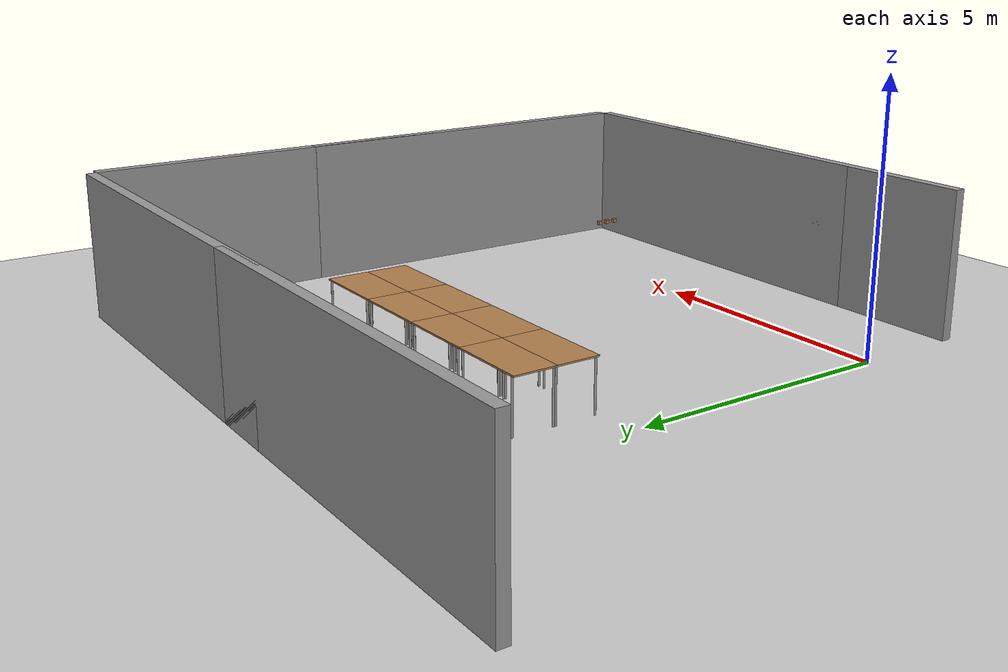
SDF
<sdf version="1.6">
 <world name="default">
  <model name="ground_plane">
   <static>1</static>
   <link name="link">
    <collision name="collision">
     <geometry><plane><normal>0 0 1</normal><size>100 100</size></plane></geometry>
     <surface>
      <contact><collide_bitmask>65535</collide_bitmask></contact>
      <friction><ode><mu>100</mu><mu2>50</mu2></ode></friction>
     </surface>
    </collision>
    <visual name="visual">
     <cast_shadows>0</cast_shadows>
     <geometry><plane><normal>0 0 1</normal><size>100 100</size></plane></geometry>
     <material>
      <script><uri>file://media/materials/scripts/gazebo.material</uri><name>Gazebo/Grey</name></script>
     </material>
    </visual>
   </link>
  </model>
  <model name="wood_cube_7_5cm">
   <link name="link">
    <pose>0 0 0.0375 0 -0 0</pose>
    <inertial>
     <mass>0.2249</mass>
     <inertia>
      <ixx>0.000210844</ixx>
      <ixy>0</ixy>
      <ixz>0</ixz>
      <iyy>0.000210844</iyy>
      <iyz>0</iyz>
      <izz>0.000210844</izz>
     </inertia>
    </inertial>
    <collision name="collision">
     <geometry><box><size>0.075 0.075 0.075</size></box></geometry>
     <surface>
      <contact>
       <poissons_ratio>0.347</poissons_ratio>
       <elastic_modulus>8.8e+09</elastic_modulus>
       <ode><kp>100000</kp><kd>100</kd><max_vel>100</max_vel><min_depth>0.001</min_depth></ode>
      </contact>
      <friction>
       <torsional>
        <coefficient>1</coefficient>
        <use_patch_radius>0</use_patch_radius>
        <surface_radius>0.01</surface_radius>
       </torsional>
      </friction>
     </surface>
    </collision>
    <visual name="visual">
     <geometry><box><size>0.075 0.075 0.075</size></box></geometry>
     <material>
      <script><uri>file://media/materials/scripts/gazebo.material</uri><name>Gazebo/Wood</name></script>
     </material>
    </visual>
   </link>
   <pose>7.3 0.2 0.963756 0 -0 0.000142</pose>
  </model>
  <model name="table_4">
   <static>1</static>
   <link name="link">
    <collision name="surface">
     <pose>0 0 1 0 -0 0</pose>
     <geometry><box><size>1.5 0.8 0.03</size></box></geometry>
     <surface><friction><ode><mu>0.6</mu><mu2>0.6</mu2></ode></friction></surface>
    </collision>
    <visual name="visual1">
     <pose>0 0 1 0 -0 0</pose>
     <geometry><box><size>1.5 0.8 0.03</size></box></geometry>
     <material>
      <script><uri>file://media/materials/scripts/gazebo.material</uri><name>Gazebo/Wood</name></script>
     </material>
    </visual>
    <collision name="front_left_leg">
     <pose>0.68 0.38 0.5 0 -0 0</pose>
     <geometry><cylinder><radius>0.02</radius><length>1</length></cylinder></geometry>
    </collision>
    <visual name="front_left_leg">
     <pose>0.68 0.38 0.5 0 -0 0</pose>
     <geometry><cylinder><radius>0.02</radius><length>1</length></cylinder></geometry>
     <material>
      <script><uri>file://media/materials/scripts/gazebo.material</uri><name>Gazebo/Grey</name></script>
     </material>
    </visual>
    <collision name="front_right_leg">
     <pose>0.68 -0.38 0.5 0 -0 0</pose>
     <geometry><cylinder><radius>0.02</radius><length>1</length></cylinder></geometry>
    </collision>
    <visual name="front_right_leg">
     <pose>0.68 -0.38 0.5 0 -0 0</pose>
     <geometry><cylinder><radius>0.02</radius><length>1</length></cylinder></geometry>
     <material>
      <script><uri>file://media/materials/scripts/gazebo.material</uri><name>Gazebo/Grey</name></script>
     </material>
    </visual>
    <collision name="back_right_leg">
     <pose>-0.68 -0.38 0.5 0 -0 0</pose>
     <geometry><cylinder><radius>0.02</radius><length>1</length></cylinder></geometry>
    </collision>
    <visual name="back_right_leg">
     <pose>-0.68 -0.38 0.5 0 -0 0</pose>
     <geometry><cylinder><radius>0.02</radius><length>1</length></cylinder></geometry>
     <material>
      <script><uri>file://media/materials/scripts/gazebo.material</uri><name>Gazebo/Grey</name></script>
     </material>
    </visual>
    <collision name="back_left_leg">
     <pose>-0.68 0.38 0.5 0 -0 0</pose>
     <geometry><cylinder><radius>0.02</radius><length>1</length></cylinder></geometry>
    </collision>
    <visual name="back_left_leg">
     <pose>-0.68 0.38 0.5 0 -0 0</pose>
     <geometry><cylinder><radius>0.02</radius><length>1</length></cylinder></geometry>
     <material>
      <script><uri>file://media/materials/scripts/gazebo.material</uri><name>Gazebo/Grey</name></script>
     </material>
    </visual>
   </link>
   <pose>1.5 6.5 0 0 -0 0</pose>
  </model>
  <model name="table_5">
   <static>1</static>
   <link name="link">
    <collision name="surface">
     <pose>0 0 1 0 -0 0</pose>
     <geometry><box><size>1.5 0.8 0.03</size></box></geometry>
     <surface><friction><ode><mu>0.6</mu><mu2>0.6</mu2></ode></friction></surface>
    </collision>
    <visual name="visual1">
     <pose>0 0 1 0 -0 0</pose>
     <geometry><box><size>1.5 0.8 0.03</size></box></geometry>
     <material>
      <script><uri>file://media/materials/scripts/gazebo.material</uri><name>Gazebo/Wood</name></script>
     </material>
    </visual>
    <collision name="front_left_leg">
     <pose>0.68 0.38 0.5 0 -0 0</pose>
     <geometry><cylinder><radius>0.02</radius><length>1</length></cylinder></geometry>
    </collision>
    <visual name="front_left_leg">
     <pose>0.68 0.38 0.5 0 -0 0</pose>
     <geometry><cylinder><radius>0.02</radius><length>1</length></cylinder></geometry>
     <material>
      <script><uri>file://media/materials/scripts/gazebo.material</uri><name>Gazebo/Grey</name></script>
     </material>
    </visual>
    <collision name="front_right_leg">
     <pose>0.68 -0.38 0.5 0 -0 0</pose>
     <geometry><cylinder><radius>0.02</radius><length>1</length></cylinder></geometry>
    </collision>
    <visual name="front_right_leg">
     <pose>0.68 -0.38 0.5 0 -0 0</pose>
     <geometry><cylinder><radius>0.02</radius><length>1</length></cylinder></geometry>
     <material>
      <script><uri>file://media/materials/scripts/gazebo.material</uri><name>Gazebo/Grey</name></script>
     </material>
    </visual>
    <collision name="back_right_leg">
     <pose>-0.68 -0.38 0.5 0 -0 0</pose>
     <geometry><cylinder><radius>0.02</radius><length>1</length></cylinder></geometry>
    </collision>
    <visual name="back_right_leg">
     <pose>-0.68 -0.38 0.5 0 -0 0</pose>
     <geometry><cylinder><radius>0.02</radius><length>1</length></cylinder></geometry>
     <material>
      <script><uri>file://media/materials/scripts/gazebo.material</uri><name>Gazebo/Grey</name></script>
     </material>
    </visual>
    <collision name="back_left_leg">
     <pose>-0.68 0.38 0.5 0 -0 0</pose>
     <geometry><cylinder><radius>0.02</radius><length>1</length></cylinder></geometry>
    </collision>
    <visual name="back_left_leg">
     <pose>-0.68 0.38 0.5 0 -0 0</pose>
     <geometry><cylinder><radius>0.02</radius><length>1</length></cylinder></geometry>
     <material>
      <script><uri>file://media/materials/scripts/gazebo.material</uri><name>Gazebo/Grey</name></script>
     </material>
    </visual>
   </link>
   <pose>3 6.5 0 0 -0 0</pose>
  </model>
  <model name="table_6">
   <static>1</static>
   <link name="link">
    <collision name="surface">
     <pose>0 0 1 0 -0 0</pose>
     <geometry><box><size>1.5 0.8 0.03</size></box></geometry>
     <surface><friction><ode><mu>0.6</mu><mu2>0.6</mu2></ode></friction></surface>
    </collision>
    <visual name="visual1">
     <pose>0 0 1 0 -0 0</pose>
     <geometry><box><size>1.5 0.8 0.03</size></box></geometry>
     <material>
      <script><uri>file://media/materials/scripts/gazebo.material</uri><name>Gazebo/Wood</name></script>
     </material>
    </visual>
    <collision name="front_left_leg">
     <pose>0.68 0.38 0.5 0 -0 0</pose>
     <geometry><cylinder><radius>0.02</radius><length>1</length></cylinder></geometry>
    </collision>
    <visual name="front_left_leg">
     <pose>0.68 0.38 0.5 0 -0 0</pose>
     <geometry><cylinder><radius>0.02</radius><length>1</length></cylinder></geometry>
     <material>
      <script><uri>file://media/materials/scripts/gazebo.material</uri><name>Gazebo/Grey</name></script>
     </material>
    </visual>
    <collision name="front_right_leg">
     <pose>0.68 -0.38 0.5 0 -0 0</pose>
     <geometry><cylinder><radius>0.02</radius><length>1</length></cylinder></geometry>
    </collision>
    <visual name="front_right_leg">
     <pose>0.68 -0.38 0.5 0 -0 0</pose>
     <geometry><cylinder><radius>0.02</radius><length>1</length></cylinder></geometry>
     <material>
      <script><uri>file://media/materials/scripts/gazebo.material</uri><name>Gazebo/Grey</name></script>
     </material>
    </visual>
    <collision name="back_right_leg">
     <pose>-0.68 -0.38 0.5 0 -0 0</pose>
     <geometry><cylinder><radius>0.02</radius><length>1</length></cylinder></geometry>
    </collision>
    <visual name="back_right_leg">
     <pose>-0.68 -0.38 0.5 0 -0 0</pose>
     <geometry><cylinder><radius>0.02</radius><length>1</length></cylinder></geometry>
     <material>
      <script><uri>file://media/materials/scripts/gazebo.material</uri><name>Gazebo/Grey</name></script>
     </material>
    </visual>
    <collision name="back_left_leg">
     <pose>-0.68 0.38 0.5 0 -0 0</pose>
     <geometry><cylinder><radius>0.02</radius><length>1</length></cylinder></geometry>
    </collision>
    <visual name="back_left_leg">
     <pose>-0.68 0.38 0.5 0 -0 0</pose>
     <geometry><cylinder><radius>0.02</radius><length>1</length></cylinder></geometry>
     <material>
      <script><uri>file://media/materials/scripts/gazebo.material</uri><name>Gazebo/Grey</name></script>
     </material>
    </visual>
   </link>
   <pose>4.5 6.5 0 0 -0 0</pose>
  </model>
  <model name="table_7">
   <static>1</static>
   <link name="link">
    <collision name="surface">
     <pose>0 0 1 0 -0 0</pose>
     <geometry><box><size>1.5 0.8 0.03</size></box></geometry>
     <surface><friction><ode><mu>0.6</mu><mu2>0.6</mu2></ode></friction></surface>
    </collision>
    <visual name="visual1">
     <pose>0 0 1 0 -0 0</pose>
     <geometry><box><size>1.5 0.8 0.03</size></box></geometry>
     <material>
      <script><uri>file://media/materials/scripts/gazebo.material</uri><name>Gazebo/Wood</name></script>
     </material>
    </visual>
    <collision name="front_left_leg">
     <pose>0.68 0.38 0.5 0 -0 0</pose>
     <geometry><cylinder><radius>0.02</radius><length>1</length></cylinder></geometry>
    </collision>
    <visual name="front_left_leg">
     <pose>0.68 0.38 0.5 0 -0 0</pose>
     <geometry><cylinder><radius>0.02</radius><length>1</length></cylinder></geometry>
     <material>
      <script><uri>file://media/materials/scripts/gazebo.material</uri><name>Gazebo/Grey</name></script>
     </material>
    </visual>
    <collision name="front_right_leg">
     <pose>0.68 -0.38 0.5 0 -0 0</pose>
     <geometry><cylinder><radius>0.02</radius><length>1</length></cylinder></geometry>
    </collision>
    <visual name="front_right_leg">
     <pose>0.68 -0.38 0.5 0 -0 0</pose>
     <geometry><cylinder><radius>0.02</radius><length>1</length></cylinder></geometry>
     <material>
      <script><uri>file://media/materials/scripts/gazebo.material</uri><name>Gazebo/Grey</name></script>
     </material>
    </visual>
    <collision name="back_right_leg">
     <pose>-0.68 -0.38 0.5 0 -0 0</pose>
     <geometry><cylinder><radius>0.02</radius><length>1</length></cylinder></geometry>
    </collision>
    <visual name="back_right_leg">
     <pose>-0.68 -0.38 0.5 0 -0 0</pose>
     <geometry><cylinder><radius>0.02</radius><length>1</length></cylinder></geometry>
     <material>
      <script><uri>file://media/materials/scripts/gazebo.material</uri><name>Gazebo/Grey</name></script>
     </material>
    </visual>
    <collision name="back_left_leg">
     <pose>-0.68 0.38 0.5 0 -0 0</pose>
     <geometry><cylinder><radius>0.02</radius><length>1</length></cylinder></geometry>
    </collision>
    <visual name="back_left_leg">
     <pose>-0.68 0.38 0.5 0 -0 0</pose>
     <geometry><cylinder><radius>0.02</radius><length>1</length></cylinder></geometry>
     <material>
      <script><uri>file://media/materials/scripts/gazebo.material</uri><name>Gazebo/Grey</name></script>
     </material>
    </visual>
   </link>
   <pose>6 6.5 0 0 -0 0</pose>
  </model>
  <model name="table_13">
   <static>1</static>
   <link name="link">
    <collision name="surface">
     <pose>0 0 1 0 -0 0</pose>
     <geometry><box><size>1.5 0.8 0.03</size></box></geometry>
     <surface><friction><ode><mu>0.6</mu><mu2>0.6</mu2></ode></friction></surface>
    </collision>
    <visual name="visual1">
     <pose>0 0 1 0 -0 0</pose>
     <geometry><box><size>1.5 0.8 0.03</size></box></geometry>
     <material>
      <script><uri>file://media/materials/scripts/gazebo.material</uri><name>Gazebo/Wood</name></script>
     </material>
    </visual>
    <collision name="front_left_leg">
     <pose>0.68 0.38 0.5 0 -0 0</pose>
     <geometry><cylinder><radius>0.02</radius><length>1</length></cylinder></geometry>
    </collision>
    <visual name="front_left_leg">
     <pose>0.68 0.38 0.5 0 -0 0</pose>
     <geometry><cylinder><radius>0.02</radius><length>1</length></cylinder></geometry>
     <material>
      <script><uri>file://media/materials/scripts/gazebo.material</uri><name>Gazebo/Grey</name></script>
     </material>
    </visual>
    <collision name="front_right_leg">
     <pose>0.68 -0.38 0.5 0 -0 0</pose>
     <geometry><cylinder><radius>0.02</radius><length>1</length></cylinder></geometry>
    </collision>
    <visual name="front_right_leg">
     <pose>0.68 -0.38 0.5 0 -0 0</pose>
     <geometry><cylinder><radius>0.02</radius><length>1</length></cylinder></geometry>
     <material>
      <script><uri>file://media/materials/scripts/gazebo.material</uri><name>Gazebo/Grey</name></script>
     </material>
    </visual>
    <collision name="back_right_leg">
     <pose>-0.68 -0.38 0.5 0 -0 0</pose>
     <geometry><cylinder><radius>0.02</radius><length>1</length></cylinder></geometry>
    </collision>
    <visual name="back_right_leg">
     <pose>-0.68 -0.38 0.5 0 -0 0</pose>
     <geometry><cylinder><radius>0.02</radius><length>1</length></cylinder></geometry>
     <material>
      <script><uri>file://media/materials/scripts/gazebo.material</uri><name>Gazebo/Grey</name></script>
     </material>
    </visual>
    <collision name="back_left_leg">
     <pose>-0.68 0.38 0.5 0 -0 0</pose>
     <geometry><cylinder><radius>0.02</radius><length>1</length></cylinder></geometry>
    </collision>
    <visual name="back_left_leg">
     <pose>-0.68 0.38 0.5 0 -0 0</pose>
     <geometry><cylinder><radius>0.02</radius><length>1</length></cylinder></geometry>
     <material>
      <script><uri>file://media/materials/scripts/gazebo.material</uri><name>Gazebo/Grey</name></script>
     </material>
    </visual>
   </link>
   <pose>1.5 5.7 0 0 -0 0</pose>
  </model>
  <model name="table_14">
   <static>1</static>
   <link name="link">
    <collision name="surface">
     <pose>0 0 1 0 -0 0</pose>
     <geometry><box><size>1.5 0.8 0.03</size></box></geometry>
     <surface><friction><ode><mu>0.6</mu><mu2>0.6</mu2></ode></friction></surface>
    </collision>
    <visual name="visual1">
     <pose>0 0 1 0 -0 0</pose>
     <geometry><box><size>1.5 0.8 0.03</size></box></geometry>
     <material>
      <script><uri>file://media/materials/scripts/gazebo.material</uri><name>Gazebo/Wood</name></script>
     </material>
    </visual>
    <collision name="front_left_leg">
     <pose>0.68 0.38 0.5 0 -0 0</pose>
     <geometry><cylinder><radius>0.02</radius><length>1</length></cylinder></geometry>
    </collision>
    <visual name="front_left_leg">
     <pose>0.68 0.38 0.5 0 -0 0</pose>
     <geometry><cylinder><radius>0.02</radius><length>1</length></cylinder></geometry>
     <material>
      <script><uri>file://media/materials/scripts/gazebo.material</uri><name>Gazebo/Grey</name></script>
     </material>
    </visual>
    <collision name="front_right_leg">
     <pose>0.68 -0.38 0.5 0 -0 0</pose>
     <geometry><cylinder><radius>0.02</radius><length>1</length></cylinder></geometry>
    </collision>
    <visual name="front_right_leg">
     <pose>0.68 -0.38 0.5 0 -0 0</pose>
     <geometry><cylinder><radius>0.02</radius><length>1</length></cylinder></geometry>
     <material>
      <script><uri>file://media/materials/scripts/gazebo.material</uri><name>Gazebo/Grey</name></script>
     </material>
    </visual>
    <collision name="back_right_leg">
     <pose>-0.68 -0.38 0.5 0 -0 0</pose>
     <geometry><cylinder><radius>0.02</radius><length>1</length></cylinder></geometry>
    </collision>
    <visual name="back_right_leg">
     <pose>-0.68 -0.38 0.5 0 -0 0</pose>
     <geometry><cylinder><radius>0.02</radius><length>1</length></cylinder></geometry>
     <material>
      <script><uri>file://media/materials/scripts/gazebo.material</uri><name>Gazebo/Grey</name></script>
     </material>
    </visual>
    <collision name="back_left_leg">
     <pose>-0.68 0.38 0.5 0 -0 0</pose>
     <geometry><cylinder><radius>0.02</radius><length>1</length></cylinder></geometry>
    </collision>
    <visual name="back_left_leg">
     <pose>-0.68 0.38 0.5 0 -0 0</pose>
     <geometry><cylinder><radius>0.02</radius><length>1</length></cylinder></geometry>
     <material>
      <script><uri>file://media/materials/scripts/gazebo.material</uri><name>Gazebo/Grey</name></script>
     </material>
    </visual>
   </link>
   <pose>3 5.7 0 0 -0 0</pose>
  </model>
  <model name="table_15">
   <static>1</static>
   <link name="link">
    <collision name="surface">
     <pose>0 0 1 0 -0 0</pose>
     <geometry><box><size>1.5 0.8 0.03</size></box></geometry>
     <surface><friction><ode><mu>0.6</mu><mu2>0.6</mu2></ode></friction></surface>
    </collision>
    <visual name="visual1">
     <pose>0 0 1 0 -0 0</pose>
     <geometry><box><size>1.5 0.8 0.03</size></box></geometry>
     <material>
      <script><uri>file://media/materials/scripts/gazebo.material</uri><name>Gazebo/Wood</name></script>
     </material>
    </visual>
    <collision name="front_left_leg">
     <pose>0.68 0.38 0.5 0 -0 0</pose>
     <geometry><cylinder><radius>0.02</radius><length>1</length></cylinder></geometry>
    </collision>
    <visual name="front_left_leg">
     <pose>0.68 0.38 0.5 0 -0 0</pose>
     <geometry><cylinder><radius>0.02</radius><length>1</length></cylinder></geometry>
     <material>
      <script><uri>file://media/materials/scripts/gazebo.material</uri><name>Gazebo/Grey</name></script>
     </material>
    </visual>
    <collision name="front_right_leg">
     <pose>0.68 -0.38 0.5 0 -0 0</pose>
     <geometry><cylinder><radius>0.02</radius><length>1</length></cylinder></geometry>
    </collision>
    <visual name="front_right_leg">
     <pose>0.68 -0.38 0.5 0 -0 0</pose>
     <geometry><cylinder><radius>0.02</radius><length>1</length></cylinder></geometry>
     <material>
      <script><uri>file://media/materials/scripts/gazebo.material</uri><name>Gazebo/Grey</name></script>
     </material>
    </visual>
    <collision name="back_right_leg">
     <pose>-0.68 -0.38 0.5 0 -0 0</pose>
     <geometry><cylinder><radius>0.02</radius><length>1</length></cylinder></geometry>
    </collision>
    <visual name="back_right_leg">
     <pose>-0.68 -0.38 0.5 0 -0 0</pose>
     <geometry><cylinder><radius>0.02</radius><length>1</length></cylinder></geometry>
     <material>
      <script><uri>file://media/materials/scripts/gazebo.material</uri><name>Gazebo/Grey</name></script>
     </material>
    </visual>
    <collision name="back_left_leg">
     <pose>-0.68 0.38 0.5 0 -0 0</pose>
     <geometry><cylinder><radius>0.02</radius><length>1</length></cylinder></geometry>
    </collision>
    <visual name="back_left_leg">
     <pose>-0.68 0.38 0.5 0 -0 0</pose>
     <geometry><cylinder><radius>0.02</radius><length>1</length></cylinder></geometry>
     <material>
      <script><uri>file://media/materials/scripts/gazebo.material</uri><name>Gazebo/Grey</name></script>
     </material>
    </visual>
   </link>
   <pose>4.5 5.7 0 0 -0 0</pose>
  </model>
  <model name="table_16">
   <static>1</static>
   <link name="link">
    <collision name="surface">
     <pose>0 0 1 0 -0 0</pose>
     <geometry><box><size>1.5 0.8 0.03</size></box></geometry>
     <surface><friction><ode><mu>0.6</mu><mu2>0.6</mu2></ode></friction></surface>
    </collision>
    <visual name="visual1">
     <pose>0 0 1 0 -0 0</pose>
     <geometry><box><size>1.5 0.8 0.03</size></box></geometry>
     <material>
      <script><uri>file://media/materials/scripts/gazebo.material</uri><name>Gazebo/Wood</name></script>
     </material>
    </visual>
    <collision name="front_left_leg">
     <pose>0.68 0.38 0.5 0 -0 0</pose>
     <geometry><cylinder><radius>0.02</radius><length>1</length></cylinder></geometry>
    </collision>
    <visual name="front_left_leg">
     <pose>0.68 0.38 0.5 0 -0 0</pose>
     <geometry><cylinder><radius>0.02</radius><length>1</length></cylinder></geometry>
     <material>
      <script><uri>file://media/materials/scripts/gazebo.material</uri><name>Gazebo/Grey</name></script>
     </material>
    </visual>
    <collision name="front_right_leg">
     <pose>0.68 -0.38 0.5 0 -0 0</pose>
     <geometry><cylinder><radius>0.02</radius><length>1</length></cylinder></geometry>
    </collision>
    <visual name="front_right_leg">
     <pose>0.68 -0.38 0.5 0 -0 0</pose>
     <geometry><cylinder><radius>0.02</radius><length>1</length></cylinder></geometry>
     <material>
      <script><uri>file://media/materials/scripts/gazebo.material</uri><name>Gazebo/Grey</name></script>
     </material>
    </visual>
    <collision name="back_right_leg">
     <pose>-0.68 -0.38 0.5 0 -0 0</pose>
     <geometry><cylinder><radius>0.02</radius><length>1</length></cylinder></geometry>
    </collision>
    <visual name="back_right_leg">
     <pose>-0.68 -0.38 0.5 0 -0 0</pose>
     <geometry><cylinder><radius>0.02</radius><length>1</length></cylinder></geometry>
     <material>
      <script><uri>file://media/materials/scripts/gazebo.material</uri><name>Gazebo/Grey</name></script>
     </material>
    </visual>
    <collision name="back_left_leg">
     <pose>-0.68 0.38 0.5 0 -0 0</pose>
     <geometry><cylinder><radius>0.02</radius><length>1</length></cylinder></geometry>
    </collision>
    <visual name="back_left_leg">
     <pose>-0.68 0.38 0.5 0 -0 0</pose>
     <geometry><cylinder><radius>0.02</radius><length>1</length></cylinder></geometry>
     <material>
      <script><uri>file://media/materials/scripts/gazebo.material</uri><name>Gazebo/Grey</name></script>
     </material>
    </visual>
   </link>
   <pose>6 5.7 0 0 -0 0</pose>
  </model>
  <model name="grey_wall_0">
   <static>1</static>
   <link name="link">
    <pose>0 0 1.4 0 -0 0</pose>
    <collision name="collision"><geometry><box><size>7.5 0.2 2.8</size></box></geometry></collision>
    <visual name="visual">
     <cast_shadows>0</cast_shadows>
     <geometry><box><size>7.5 0.2 2.8</size></box></geometry>
     <material>
      <script>
       <uri>model://grey_wall/materials/scripts</uri>
       <uri>model://grey_wall/materials/textures</uri>
       <name>vrc/grey_wall</name>
      </script>
     </material>
    </visual>
   </link>
   <pose>3.75 -2.1 0 0 -0 0</pose>
  </model>
  <model name="grey_wall_2">
   <static>1</static>
   <link name="link">
    <pose>0 0 1.4 0 -0 0</pose>
    <collision name="collision"><geometry><box><size>7.5 0.2 2.8</size></box></geometry></collision>
    <visual name="visual">
     <cast_shadows>0</cast_shadows>
     <geometry><box><size>7.5 0.2 2.8</size></box></geometry>
     <material>
      <script>
       <uri>model://grey_wall/materials/scripts</uri>
       <uri>model://grey_wall/materials/textures</uri>
       <name>vrc/grey_wall</name>
      </script>
     </material>
    </visual>
   </link>
   <pose>6.25 -2.1 0 0 -0 0</pose>
  </model>
  <model name="grey_wall_3_clone_clone">
   <static>1</static>
   <link name="link">
    <pose>0 0 1.4 0 -0 0</pose>
    <collision name="collision"><geometry><box><size>7.5 0.2 2.8</size></box></geometry></collision>
    <visual name="visual">
     <cast_shadows>0</cast_shadows>
     <geometry><box><size>7.5 0.2 2.8</size></box></geometry>
     <material>
      <script>
       <uri>model://grey_wall/materials/scripts</uri>
       <uri>model://grey_wall/materials/textures</uri>
       <name>vrc/grey_wall</name>
      </script>
     </material>
    </visual>
   </link>
   <pose>10.1 6.25 0 0 -0 1.5708</pose>
  </model>
  <model name="grey_wall_3_clone_clone_0">
   <static>1</static>
   <link name="link">
    <pose>0 0 1.4 0 -0 0</pose>
    <collision name="collision"><geometry><box><size>7.5 0.2 2.8</size></box></geometry></collision>
    <visual name="visual">
     <cast_shadows>0</cast_shadows>
     <geometry><box><size>7.5 0.2 2.8</size></box></geometry>
     <material>
      <script>
       <uri>model://grey_wall/materials/scripts</uri>
       <uri>model://grey_wall/materials/textures</uri>
       <name>vrc/grey_wall</name>
      </script>
     </material>
    </visual>
   </link>
   <pose>10.1 1.75 0 0 -0 1.5708</pose>
  </model>
  <model name="grey_wall_clone">
   <static>1</static>
   <link name="link">
    <pose>0 0 1.4 0 -0 0</pose>
    <collision name="collision"><geometry><box><size>7.5 0.2 2.8</size></box></geometry></collision>
    <visual name="visual">
     <cast_shadows>0</cast_shadows>
     <geometry><box><size>7.5 0.2 2.8</size></box></geometry>
     <material>
      <script>
       <uri>model://grey_wall/materials/scripts</uri>
       <uri>model://grey_wall/materials/textures</uri>
       <name>vrc/grey_wall</name>
      </script>
     </material>
    </visual>
   </link>
   <pose>0 10.1 0 0 -0 0</pose>
  </model>
  <model name="grey_wall_clone_0">
   <static>1</static>
   <link name="link">
    <pose>0 0 1.4 0 -0 0</pose>
    <collision name="collision"><geometry><box><size>7.5 0.2 2.8</size></box></geometry></collision>
    <visual name="visual">
     <cast_shadows>0</cast_shadows>
     <geometry><box><size>7.5 0.2 2.8</size></box></geometry>
     <material>
      <script>
       <uri>model://grey_wall/materials/scripts</uri>
       <uri>model://grey_wall/materials/textures</uri>
       <name>vrc/grey_wall</name>
      </script>
     </material>
    </visual>
   </link>
   <pose>6.25 10.1 0 0 -0 0</pose>
  </model>
  <model name="wood_cube_7_5cm_0">
   <link name="link">
    <pose>0 0 0.0375 0 -0 0</pose>
    <inertial>
     <mass>0.2249</mass>
     <inertia>
      <ixx>0.000210844</ixx>
      <ixy>0</ixy>
      <ixz>0</ixz>
      <iyy>0.000210844</iyy>
      <iyz>0</iyz>
      <izz>0.000210844</izz>
     </inertia>
    </inertial>
    <collision name="collision">
     <geometry><box><size>0.075 0.075 0.075</size></box></geometry>
     <surface>
      <contact>
       <poissons_ratio>0.347</poissons_ratio>
       <elastic_modulus>8.8e+09</elastic_modulus>
       <ode><kp>100000</kp><kd>100</kd><max_vel>100</max_vel><min_depth>0.001</min_depth></ode>
      </contact>
      <friction>
       <torsional>
        <coefficient>1</coefficient>
        <use_patch_radius>0</use_patch_radius>
        <surface_radius>0.01</surface_radius>
       </torsional>
      </friction>
     </surface>
    </collision>
    <visual name="visual">
     <geometry><box><size>0.075 0.075 0.075</size></box></geometry>
     <material>
      <script><uri>file://media/materials/scripts/gazebo.material</uri><name>Gazebo/Wood</name></script>
     </material>
    </visual>
   </link>
   <pose>7.3 -2e-06 0.963759 4e-06 -0 0.000639</pose>
  </model>
  <model name="wood_cube_7_5cm_1">
   <link name="link">
    <pose>0 0 0.0375 0 -0 0</pose>
    <inertial>
     <mass>0.2249</mass>
     <inertia>
      <ixx>0.000210844</ixx>
      <ixy>0</ixy>
      <ixz>0</ixz>
      <iyy>0.000210844</iyy>
      <iyz>0</iyz>
      <izz>0.000210844</izz>
     </inertia>
    </inertial>
    <collision name="collision">
     <geometry><box><size>0.075 0.075 0.075</size></box></geometry>
     <surface>
      <contact>
       <poissons_ratio>0.347</poissons_ratio>
       <elastic_modulus>8.8e+09</elastic_modulus>
       <ode><kp>100000</kp><kd>100</kd><max_vel>100</max_vel><min_depth>0.001</min_depth></ode>
      </contact>
      <friction>
       <torsional>
        <coefficient>1</coefficient>
        <use_patch_radius>0</use_patch_radius>
        <surface_radius>0.01</surface_radius>
       </torsional>
      </friction>
     </surface>
    </collision>
    <visual name="visual">
     <geometry><box><size>0.075 0.075 0.075</size></box></geometry>
     <material>
      <script><uri>file://media/materials/scripts/gazebo.material</uri><name>Gazebo/Wood</name></script>
     </material>
    </visual>
   </link>
   <pose>7.3 -0.2 0.963758 -3.5e-05 -3.7e-05 0</pose>
  </model>
 </world>
</sdf>
